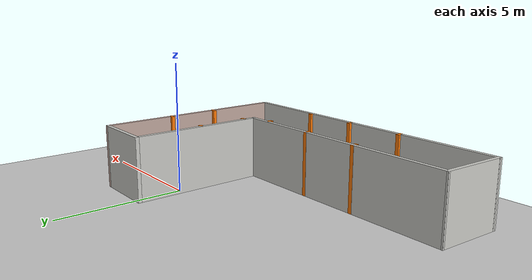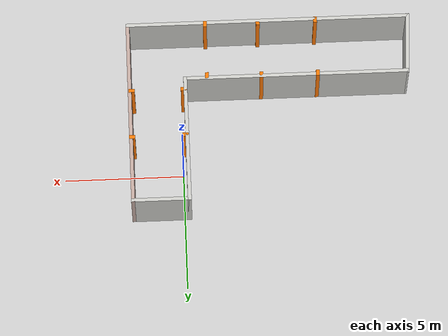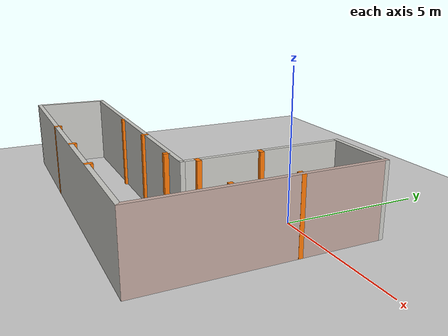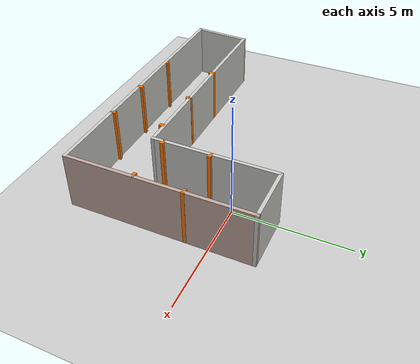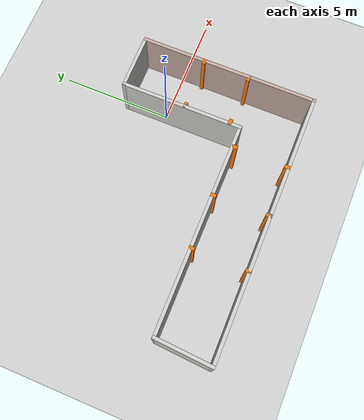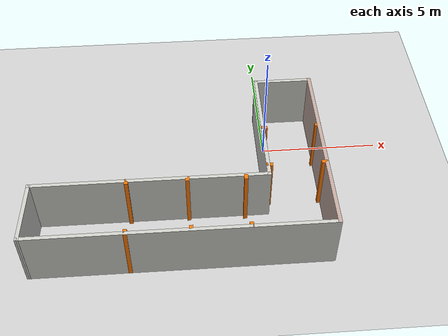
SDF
<sdf version='1.4'>
  <world name='default'>
    <light name='sun' type='directional'>
      <cast_shadows>1</cast_shadows>
      <pose frame=''>0 0 10 0 -0 0</pose>
      <diffuse>0.8 0.8 0.8 1</diffuse>
      <specular>0.1 0.1 0.1 1</specular>
      <attenuation>
        <range>1000</range>
        <constant>0.9</constant>
        <linear>0.01</linear>
        <quadratic>0.001</quadratic>
      </attenuation>
      <direction>-0.5 0.5 -1</direction>
    </light>
    <model name='ground_plane'>
      <static>1</static>
      <link name='link'>
        <collision name='collision'>
          <geometry>
            <plane>
              <normal>0 0 1</normal>
              <size>100 100</size>
            </plane>
          </geometry>
          <surface>
            <friction>
              <ode>
                <mu>100</mu>
                <mu2>50</mu2>
              </ode>
            </friction>
            <contact>
              <ode/>
            </contact>
            <bounce/>
          </surface>
          <max_contacts>10</max_contacts>
        </collision>
        <visual name='visual'>
          <cast_shadows>0</cast_shadows>
          <geometry>
            <plane>
              <normal>0 0 1</normal>
              <size>100 100</size>
            </plane>
          </geometry>
          <material>
            <script>
              <uri>file://media/materials/scripts/gazebo.material</uri>
              <name>Gazebo/Grey</name>
            </script>
          </material>
        </visual>
        <self_collide>0</self_collide>
        <kinematic>0</kinematic>
        <gravity>1</gravity>
      </link>
    </model>
    <physics name='default_physics' default='0' type='ode'>
      <real_time_factor>0</real_time_factor>
    </physics>
    <scene>
      <ambient>0.4 0.4 0.4 1</ambient>
      <background>0.7 0.7 0.7 1</background>
      <shadows>1</shadows>
    </scene>
    <spherical_coordinates>
      <surface_model>EARTH_WGS84</surface_model>
      <latitude_deg>0</latitude_deg>
      <longitude_deg>0</longitude_deg>
      <elevation>0</elevation>
      <heading_deg>0</heading_deg>
    </spherical_coordinates>
    <model name='Simple_Maze'>
      <pose frame=''>-3.78616 -2.07429 0 0 -0 0</pose>
      <link name='Wall_25'>
        <collision name='Wall_25_Collision'>
          <geometry>
            <box>
              <size>12 0.15 2.5</size>
            </box>
          </geometry>
          <pose frame=''>0 0 1.25 0 -0 0</pose>
          <max_contacts>10</max_contacts>
          <surface>
            <contact>
              <ode/>
            </contact>
            <bounce/>
            <friction>
              <ode/>
            </friction>
          </surface>
        </collision>
        <visual name='Wall_25_Visual'>
          <pose frame=''>0 0 1.25 0 -0 0</pose>
          <geometry>
            <box>
              <size>12 0.15 2.5</size>
            </box>
          </geometry>
          <material>
            <script>
              <uri>file://media/materials/scripts/gazebo.material</uri>
              <name>Gazebo/CeilingTiled</name>
            </script>
            <ambient>0.760784 0.662745 0.627451 1</ambient>
          </material>
        </visual>
        <pose frame=''>0.000469 -3.92078 0 0 -0 0</pose>
        <self_collide>0</self_collide>
        <kinematic>0</kinematic>
        <gravity>1</gravity>
      </link>
      <link name='Wall_26'>
        <collision name='Wall_26_Collision'>
          <geometry>
            <box>
              <size>8 0.15 2.5</size>
            </box>
          </geometry>
          <pose frame=''>0 0 1.25 0 -0 0</pose>
          <max_contacts>10</max_contacts>
          <surface>
            <contact>
              <ode/>
            </contact>
            <bounce/>
            <friction>
              <ode/>
            </friction>
          </surface>
        </collision>
        <visual name='Wall_26_Visual'>
          <pose frame=''>0 0 1.25 0 -0 0</pose>
          <geometry>
            <box>
              <size>8 0.15 2.5</size>
            </box>
          </geometry>
          <material>
            <script>
              <uri>file://media/materials/scripts/gazebo.material</uri>
              <name>Gazebo/Grey</name>
            </script>
            <ambient>0.760784 0.662745 0.627451 1</ambient>
          </material>
        </visual>
        <pose frame=''>5.92547 0.004224 0 0 -0 1.5708</pose>
        <self_collide>0</self_collide>
        <kinematic>0</kinematic>
        <gravity>1</gravity>
      </link>
      <link name='Wall_27'>
        <collision name='Wall_27_Collision'>
          <geometry>
            <box>
              <size>2.5 0.15 2.5</size>
            </box>
          </geometry>
          <pose frame=''>0 0 1.25 0 -0 0</pose>
          <max_contacts>10</max_contacts>
          <surface>
            <contact>
              <ode/>
            </contact>
            <bounce/>
            <friction>
              <ode/>
            </friction>
          </surface>
        </collision>
        <visual name='Wall_27_Visual'>
          <pose frame=''>0 0 1.25 0 -0 0</pose>
          <geometry>
            <box>
              <size>2.5 0.15 2.5</size>
            </box>
          </geometry>
          <material>
            <script>
              <uri>file://media/materials/scripts/gazebo.material</uri>
              <name>Gazebo/CeilingTiled</name>
            </script>
            <ambient>0.435294 0.796078 0.67451 1</ambient>
          </material>
        </visual>
        <pose frame=''>4.75047 3.92922 0 0 -0 3.14159</pose>
        <self_collide>0</self_collide>
        <kinematic>0</kinematic>
        <gravity>1</gravity>
      </link>
      <link name='Wall_28'>
        <collision name='Wall_28_Collision'>
          <geometry>
            <box>
              <size>5.5 0.15 2.5</size>
            </box>
          </geometry>
          <pose frame=''>0 0 1.25 0 -0 0</pose>
          <max_contacts>10</max_contacts>
          <surface>
            <contact>
              <ode/>
            </contact>
            <bounce/>
            <friction>
              <ode/>
            </friction>
          </surface>
        </collision>
        <visual name='Wall_28_Visual'>
          <pose frame=''>0 0 1.25 0 -0 0</pose>
          <geometry>
            <box>
              <size>5.5 0.15 2.5</size>
            </box>
          </geometry>
          <material>
            <script>
              <uri>file://media/materials/scripts/gazebo.material</uri>
              <name>Gazebo/CeilingTiled</name>
            </script>
            <ambient>0.760784 0.662745 0.627451 1</ambient>
          </material>
        </visual>
        <pose frame=''>3.57547 1.25422 0 0 0 -1.5708</pose>
        <self_collide>0</self_collide>
        <kinematic>0</kinematic>
        <gravity>1</gravity>
      </link>
      <link name='Wall_29'>
        <collision name='Wall_29_Collision'>
          <geometry>
            <box>
              <size>9.5 0.15 2.5</size>
            </box>
          </geometry>
          <pose frame=''>0 0 1.25 0 -0 0</pose>
          <max_contacts>10</max_contacts>
          <surface>
            <contact>
              <ode/>
            </contact>
            <bounce/>
            <friction>
              <ode/>
            </friction>
          </surface>
        </collision>
        <visual name='Wall_29_Visual'>
          <pose frame=''>0 0 1.25 0 -0 0</pose>
          <geometry>
            <box>
              <size>9.5 0.15 2.5</size>
            </box>
          </geometry>
          <material>
            <script>
              <uri>file://media/materials/scripts/gazebo.material</uri>
              <name>Gazebo/CeilingTiled</name>
            </script>
            <ambient>0.760784 0.662745 0.627451 1</ambient>
          </material>
        </visual>
        <pose frame=''>-1.09953 -1.42078 0 0 -0 3.14159</pose>
        <self_collide>0</self_collide>
        <kinematic>0</kinematic>
        <gravity>1</gravity>
      </link>
      <link name='Wall_30'>
        <collision name='Wall_30_Collision'>
          <geometry>
            <box>
              <size>2.6545 0.15 2.5</size>
            </box>
          </geometry>
          <pose frame=''>0 0 1.25 0 -0 0</pose>
          <max_contacts>10</max_contacts>
          <surface>
            <contact>
              <ode/>
            </contact>
            <bounce/>
            <friction>
              <ode/>
            </friction>
          </surface>
        </collision>
        <visual name='Wall_30_Visual'>
          <pose frame=''>0 0 1.25 0 -0 0</pose>
          <geometry>
            <box>
              <size>2.6545 0.15 2.5</size>
            </box>
          </geometry>
          <material>
            <script>
              <uri>file://media/materials/scripts/gazebo.material</uri>
              <name>Gazebo/CeilingTiled</name>
            </script>
            <ambient>0.760784 0.662745 0.627451 1</ambient>
          </material>
        </visual>
        <pose frame=''>-5.84953 -2.67078 0 0 0 -1.63072</pose>
        <self_collide>0</self_collide>
        <kinematic>0</kinematic>
        <gravity>1</gravity>
      </link>
      <link name='Wall_32'>
        <collision name='Wall_32_Collision'>
          <geometry>
            <box>
              <size>0.25 0.15 2.5</size>
            </box>
          </geometry>
          <pose frame=''>0 0 1.25 0 -0 0</pose>
          <max_contacts>10</max_contacts>
          <surface>
            <contact>
              <ode/>
            </contact>
            <bounce/>
            <friction>
              <ode/>
            </friction>
          </surface>
        </collision>
        <visual name='Wall_32_Visual'>
          <pose frame=''>0 0 1.25 0 -0 0</pose>
          <geometry>
            <box>
              <size>0.25 0.15 2.5</size>
            </box>
          </geometry>
          <material>
            <script>
              <uri>file://media/materials/scripts/gazebo.material</uri>
              <name>Gazebo/Grey</name>
            </script>
            <ambient>0.996078 0.47451 0.0196078 1</ambient>
          </material>
        </visual>
        <pose frame=''>-2.01597 -1.46503 0 0 0 -1.5708</pose>
        <self_collide>0</self_collide>
        <kinematic>0</kinematic>
        <gravity>1</gravity>
      </link>
      <link name='Wall_34'>
        <collision name='Wall_34_Collision'>
          <geometry>
            <box>
              <size>0.25 0.15 2.5</size>
            </box>
          </geometry>
          <pose frame=''>0 0 1.25 0 -0 0</pose>
          <max_contacts>10</max_contacts>
          <surface>
            <contact>
              <ode/>
            </contact>
            <bounce/>
            <friction>
              <ode/>
            </friction>
          </surface>
        </collision>
        <visual name='Wall_34_Visual'>
          <pose frame=''>0 0 1.25 0 -0 0</pose>
          <geometry>
            <box>
              <size>0.25 0.15 2.5</size>
            </box>
          </geometry>
          <material>
            <script>
              <uri>file://media/materials/scripts/gazebo.material</uri>
              <name>Gazebo/Grey</name>
            </script>
            <ambient>0.996078 0.47451 0.0196078 1</ambient>
          </material>
        </visual>
        <pose frame=''>0.357428 -1.46503 0 0 0 -1.5708</pose>
        <self_collide>0</self_collide>
        <kinematic>0</kinematic>
        <gravity>1</gravity>
      </link>
      <link name='Wall_36'>
        <collision name='Wall_36_Collision'>
          <geometry>
            <box>
              <size>0.25 0.15 2.5</size>
            </box>
          </geometry>
          <pose frame=''>0 0 1.25 0 -0 0</pose>
          <max_contacts>10</max_contacts>
          <surface>
            <contact>
              <ode/>
            </contact>
            <bounce/>
            <friction>
              <ode/>
            </friction>
          </surface>
        </collision>
        <visual name='Wall_36_Visual'>
          <pose frame=''>0 0 1.25 0 -0 0</pose>
          <geometry>
            <box>
              <size>0.25 0.15 2.5</size>
            </box>
          </geometry>
          <material>
            <script>
              <uri>file://media/materials/scripts/gazebo.material</uri>
              <name>Gazebo/Grey</name>
            </script>
            <ambient>0.996078 0.47451 0.0196078 1</ambient>
          </material>
        </visual>
        <pose frame=''>-2.01597 -3.87922 0 0 -0 1.5708</pose>
        <self_collide>0</self_collide>
        <kinematic>0</kinematic>
        <gravity>1</gravity>
      </link>
      <link name='Wall_38'>
        <collision name='Wall_38_Collision'>
          <geometry>
            <box>
              <size>0.25 0.15 2.5</size>
            </box>
          </geometry>
          <pose frame=''>0 0 1.25 0 -0 0</pose>
          <max_contacts>10</max_contacts>
          <surface>
            <contact>
              <ode/>
            </contact>
            <bounce/>
            <friction>
              <ode/>
            </friction>
          </surface>
        </collision>
        <visual name='Wall_38_Visual'>
          <pose frame=''>0 0 1.25 0 -0 0</pose>
          <geometry>
            <box>
              <size>0.25 0.15 2.5</size>
            </box>
          </geometry>
          <material>
            <script>
              <uri>file://media/materials/scripts/gazebo.material</uri>
              <name>Gazebo/Grey</name>
            </script>
            <ambient>0.996078 0.47451 0.0196078 1</ambient>
          </material>
        </visual>
        <pose frame=''>0.417769 -3.85911 0 0 -0 1.5708</pose>
        <self_collide>0</self_collide>
        <kinematic>0</kinematic>
        <gravity>1</gravity>
      </link>
      <link name='Wall_40'>
        <collision name='Wall_40_Collision'>
          <geometry>
            <box>
              <size>0.25 0.15 2.5</size>
            </box>
          </geometry>
          <pose frame=''>0 0 1.25 0 -0 0</pose>
          <max_contacts>10</max_contacts>
          <surface>
            <contact>
              <ode/>
            </contact>
            <bounce/>
            <friction>
              <ode/>
            </friction>
          </surface>
        </collision>
        <visual name='Wall_40_Visual'>
          <pose frame=''>0 0 1.25 0 -0 0</pose>
          <geometry>
            <box>
              <size>0.25 0.15 2.5</size>
            </box>
          </geometry>
          <material>
            <script>
              <uri>file://media/materials/scripts/gazebo.material</uri>
              <name>Gazebo/Grey</name>
            </script>
            <ambient>0.996078 0.47451 0.0196078 1</ambient>
          </material>
        </visual>
        <pose frame=''>2.65037 -3.85911 0 0 -0 1.5708</pose>
        <self_collide>0</self_collide>
        <kinematic>0</kinematic>
        <gravity>1</gravity>
      </link>
      <link name='Wall_42'>
        <collision name='Wall_42_Collision'>
          <geometry>
            <box>
              <size>0.25 0.15 2.5</size>
            </box>
          </geometry>
          <pose frame=''>0 0 1.25 0 -0 0</pose>
          <max_contacts>10</max_contacts>
          <surface>
            <contact>
              <ode/>
            </contact>
            <bounce/>
            <friction>
              <ode/>
            </friction>
          </surface>
        </collision>
        <visual name='Wall_42_Visual'>
          <pose frame=''>0 0 1.25 0 -0 0</pose>
          <geometry>
            <box>
              <size>0.25 0.15 2.5</size>
            </box>
          </geometry>
          <material>
            <script>
              <uri>file://media/materials/scripts/gazebo.material</uri>
              <name>Gazebo/Grey</name>
            </script>
            <ambient>0.996078 0.47451 0.0196078 1</ambient>
          </material>
        </visual>
        <pose frame=''>2.65037 -1.52537 0 0 0 -1.5708</pose>
        <self_collide>0</self_collide>
        <kinematic>0</kinematic>
        <gravity>1</gravity>
      </link>
      <link name='Wall_44'>
        <collision name='Wall_44_Collision'>
          <geometry>
            <box>
              <size>0.25 0.15 2.5</size>
            </box>
          </geometry>
          <pose frame=''>0 0 1.25 0 -0 0</pose>
          <max_contacts>10</max_contacts>
          <surface>
            <contact>
              <ode/>
            </contact>
            <bounce/>
            <friction>
              <ode/>
            </friction>
          </surface>
        </collision>
        <visual name='Wall_44_Visual'>
          <pose frame=''>0 0 1.25 0 -0 0</pose>
          <geometry>
            <box>
              <size>0.25 0.15 2.5</size>
            </box>
          </geometry>
          <material>
            <script>
              <uri>file://media/materials/scripts/gazebo.material</uri>
              <name>Gazebo/Grey</name>
            </script>
            <ambient>0.996078 0.47451 0.0196078 1</ambient>
          </material>
        </visual>
        <pose frame=''>3.64571 -0.952416 0 0 -0 0</pose>
        <self_collide>0</self_collide>
        <kinematic>0</kinematic>
        <gravity>1</gravity>
      </link>
      <link name='Wall_50'>
        <collision name='Wall_50_Collision'>
          <geometry>
            <box>
              <size>0.25 0.15 2.5</size>
            </box>
          </geometry>
          <pose frame=''>0 0 1.25 0 -0 0</pose>
          <max_contacts>10</max_contacts>
          <surface>
            <contact>
              <ode/>
            </contact>
            <bounce/>
            <friction>
              <ode/>
            </friction>
          </surface>
        </collision>
        <visual name='Wall_50_Visual'>
          <pose frame=''>0 0 1.25 0 -0 0</pose>
          <geometry>
            <box>
              <size>0.25 0.15 2.5</size>
            </box>
          </geometry>
          <material>
            <script>
              <uri>file://media/materials/scripts/gazebo.material</uri>
              <name>Gazebo/Grey</name>
            </script>
            <ambient>0.996078 0.47451 0.0196078 1</ambient>
          </material>
        </visual>
        <pose frame=''>5.83866 -0.952416 0 0 -0 3.14159</pose>
        <self_collide>0</self_collide>
        <kinematic>0</kinematic>
        <gravity>1</gravity>
      </link>
      <link name='Wall_52'>
        <collision name='Wall_52_Collision'>
          <geometry>
            <box>
              <size>0.25 0.15 2.5</size>
            </box>
          </geometry>
          <pose frame=''>0 0 1.25 0 -0 0</pose>
          <max_contacts>10</max_contacts>
          <surface>
            <contact>
              <ode/>
            </contact>
            <bounce/>
            <friction>
              <ode/>
            </friction>
          </surface>
        </collision>
        <visual name='Wall_52_Visual'>
          <pose frame=''>0 0 1.25 0 -0 0</pose>
          <geometry>
            <box>
              <size>0.25 0.15 2.5</size>
            </box>
          </geometry>
          <material>
            <script>
              <uri>file://media/materials/scripts/gazebo.material</uri>
              <name>Gazebo/Grey</name>
            </script>
            <ambient>0.996078 0.47451 0.0196078 1</ambient>
          </material>
        </visual>
        <pose frame=''>3.64571 1.09917 0 0 -0 0</pose>
        <self_collide>0</self_collide>
        <kinematic>0</kinematic>
        <gravity>1</gravity>
      </link>
      <link name='Wall_56'>
        <collision name='Wall_56_Collision'>
          <geometry>
            <box>
              <size>0.25 0.15 2.5</size>
            </box>
          </geometry>
          <pose frame=''>0 0 1.25 0 -0 0</pose>
          <max_contacts>10</max_contacts>
          <surface>
            <contact>
              <ode/>
            </contact>
            <bounce/>
            <friction>
              <ode/>
            </friction>
          </surface>
        </collision>
        <visual name='Wall_56_Visual'>
          <pose frame=''>0 0 1.25 0 -0 0</pose>
          <geometry>
            <box>
              <size>0.25 0.15 2.5</size>
            </box>
          </geometry>
          <material>
            <script>
              <uri>file://media/materials/scripts/gazebo.material</uri>
              <name>Gazebo/Grey</name>
            </script>
            <ambient>0.996078 0.47451 0.0196078 1</ambient>
          </material>
        </visual>
        <pose frame=''>5.87889 1.11928 0 0 -0 3.14159</pose>
        <self_collide>0</self_collide>
        <kinematic>0</kinematic>
        <gravity>1</gravity>
      </link>
      <static>1</static>
    </model>
    <gui fullscreen='0'>
      <camera name='user_camera'>
        <pose frame=''>6.16861 -6.8586 29.2113 -2e-06 1.12038 2.08392</pose>
        <view_controller>orbit</view_controller>
      </camera>
    </gui>
  </world>
</sdf>
